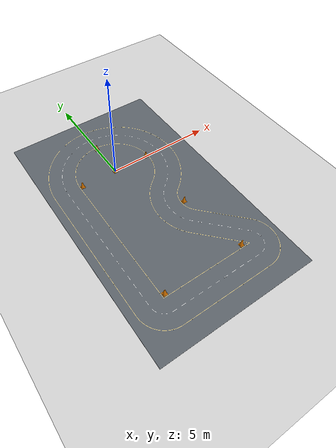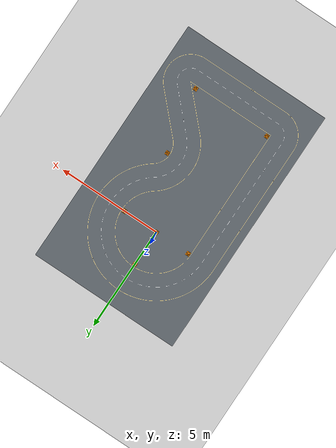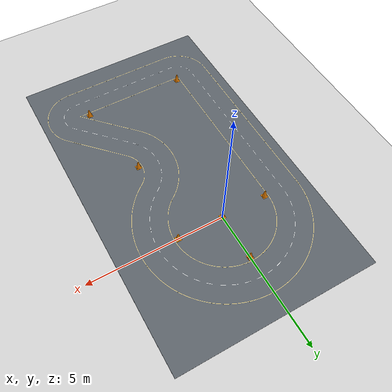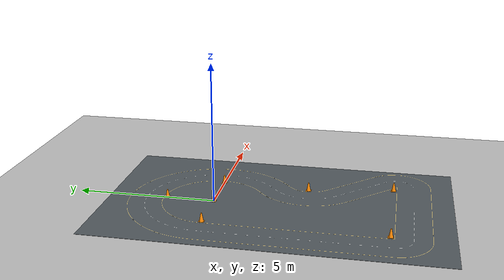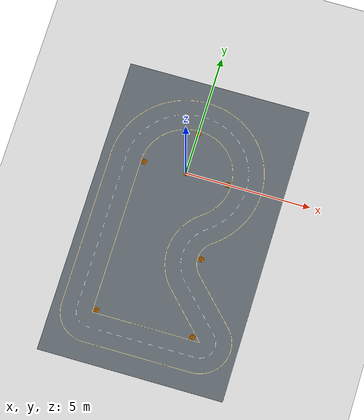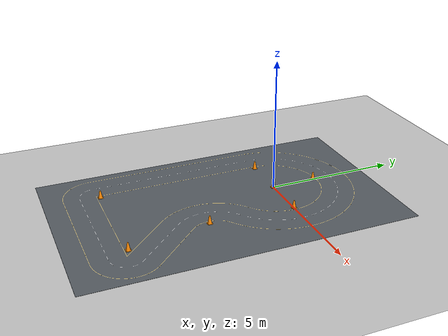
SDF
<sdf version="1.5">
 <world name="racetrack">
  <include><uri>model://ground_plane</uri></include>
  <include><uri>model://sun</uri></include>
  <model name="racetrack_model">
   <static>true</static>
   <pose>0 0 0.01 0 0 0</pose>
   <include><uri>model://Racetrack</uri></include>
  </model>
  <model name="trafficcone_1">
   <static>true</static>
   <pose>0 1.70 0.01 0 0 0</pose>
   <include><uri>model://TrafficCone</uri></include>
  </model>
  <model name="trafficcone_2">
   <static>true</static>
   <pose>-1.70 0 0.01 0 0 0</pose>
   <include><uri>model://TrafficCone</uri></include>
  </model>
  <model name="trafficcone_3">
   <static>true</static>
   <pose>1.70 0 0.01 0 0 0</pose>
   <include><uri>model://TrafficCone</uri></include>
  </model>
  <model name="trafficcone_4">
   <static>true</static>
   <pose>-1.70 -6.27 0.01 0 0 0</pose>
   <include><uri>model://TrafficCone</uri></include>
  </model>
  <model name="trafficcone_5">
   <static>true</static>
   <pose>2.10 -6.27 0.01 0 0 0</pose>
   <include><uri>model://TrafficCone</uri></include>
  </model>
  <model name="trafficcone_6">
   <static>true</static>
   <pose>1.55 -3.20 0.01 0 0 0</pose>
   <include><uri>model://TrafficCone</uri></include>
  </model>
  <model name="trafficcone_variable">
   <static>true</static>
   <pose>0.0 0.0 0.01 0 0 0</pose>
   <include><uri>model://TrafficCone</uri></include>
  </model>
 </world>
</sdf>

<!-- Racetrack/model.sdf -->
<sdf version="1.5">
  <model name="Racetrack">

    <link name="link">
      <pose>0.0 0.0 0.0 0 0 0</pose>
      <collision name="collision">
        <pose>0.254 -2.286 -0.005</pose>
        <geometry>
          <box>
            <size>7.3152 12.192 0.01</size>
          </box>
        </geometry>
      </collision>
      <visual name="visual">
        <geometry>
          <mesh><uri>model://Racetrack/meshes/Racetrack.dae</uri></mesh>
        </geometry>
      </visual>
    </link>

  </model>
</sdf>

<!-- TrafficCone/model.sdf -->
<sdf version="1.5">
  <model name="TrafficCone">

    <link name="link">
      <pose>0.0 0.0 0.0 0 0 0</pose>
      <collision name="collision">
        <geometry>
          <mesh><uri>model://TrafficCone/meshes/TrafficCone.dae</uri></mesh>
        </geometry>
      </collision>
      <visual name="visual">
        <geometry>
          <mesh><uri>model://TrafficCone/meshes/TrafficCone.dae</uri></mesh>
        </geometry>
      </visual>
    </link>

  </model>
</sdf>
